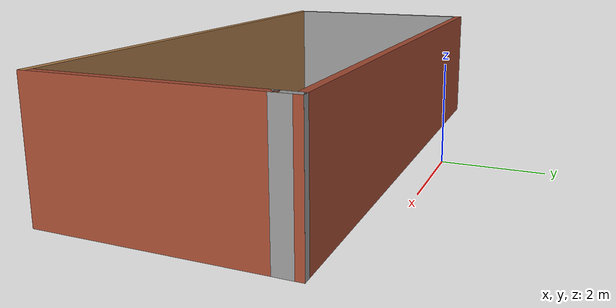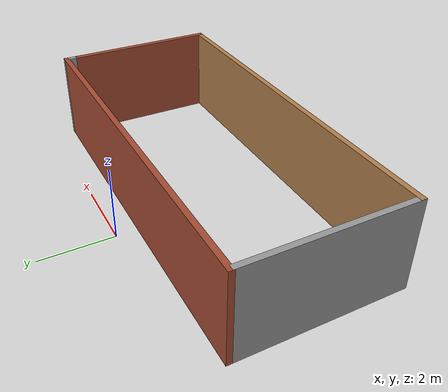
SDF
<?xml version='1.0'?>
<sdf version='1.6'>
  <model name='room'>
    <pose frame=''>0.48 -2.875 0 0 -0 0</pose>
    <link name='Wall_0'>
      <collision name='Wall_0_Collision'>
        <geometry>
          <box>
            <size>4.5 0.15 2.5</size>
          </box>
        </geometry>
        <pose frame=''>0 0 1.25 0 -0 0</pose>
      </collision>
      <visual name='Wall_0_Visual'>
        <pose frame=''>0 0 1.25 0 -0 0</pose>
        <geometry>
          <box>
            <size>4.5 0.15 2.5</size>
          </box>
        </geometry>
        <material>
          <script>
            <uri>file://media/materials/scripts/gazebo.material</uri>
            <name>Gazebo/Grey</name>
          </script>
          <ambient>1 1 1 1</ambient>
        </material>
        <meta>
          <layer>0</layer>
        </meta>
      </visual>
      <pose frame=''>-5.05 -0.05 0 0 0 -1.5708</pose>
    </link>
    <link name='Wall_1'>
      <collision name='Wall_1_Collision'>
        <geometry>
          <box>
            <size>10.25 0.15 2.5</size>
          </box>
        </geometry>
        <pose frame=''>0 0 1.25 0 -0 0</pose>
      </collision>
      <visual name='Wall_1_Visual'>
        <pose frame=''>0 0 1.25 0 -0 0</pose>
        <geometry>
          <box>
            <size>10.25 0.15 2.5</size>
          </box>
        </geometry>
        <material>
          <script>
            <uri>file://media/materials/scripts/gazebo.material</uri>
            <name>Gazebo/Wood</name>
          </script>
          <ambient>1 1 1 1</ambient>
        </material>
        <meta>
          <layer>0</layer>
        </meta>
      </visual>
      <pose frame=''>0 -2.225 0 0 -0 0</pose>
    </link>
    <link name='Wall_2'>
      <collision name='Wall_2_Collision'>
        <geometry>
          <box>
            <size>4.25 0.15 2.5</size>
          </box>
        </geometry>
        <pose frame=''>0 0 1.25 0 -0 0</pose>
      </collision>
      <visual name='Wall_2_Visual'>
        <pose frame=''>0 0 1.25 0 -0 0</pose>
        <geometry>
          <box>
            <size>4.25 0.15 2.5</size>
          </box>
        </geometry>
        <material>
          <script>
            <uri>file://media/materials/scripts/gazebo.material</uri>
            <name>Gazebo/Bricks</name>
          </script>
          <ambient>1 1 1 1</ambient>
        </material>
        <meta>
          <layer>0</layer>
        </meta>
      </visual>
      <pose frame=''>5.05 -0.175 0 0 -0 1.5708</pose>
    </link>
    <link name='Wall_3'>
      <collision name='Wall_3_Collision'>
        <geometry>
          <box>
            <size>0.5 0.15 2.5</size>
          </box>
        </geometry>
        <pose frame=''>0 0 1.25 0 -0 0</pose>
      </collision>
      <visual name='Wall_3_Visual'>
        <pose frame=''>0 0 1.25 0 -0 0</pose>
        <geometry>
          <box>
            <size>0.5 0.15 2.5</size>
          </box>
        </geometry>
        <material>
          <script>
            <uri>file://media/materials/scripts/gazebo.material</uri>
            <name>Gazebo/Grey</name>
          </script>
          <ambient>1 1 1 1</ambient>
        </material>
        <meta>
          <layer>0</layer>
        </meta>
      </visual>
      <pose frame=''>5.05 2.05 0 0 -0 1.5708</pose>
    </link>
    <link name='Wall_4'>
      <collision name='Wall_4_Collision'>
        <geometry>
          <box>
            <size>10.2505 0.15 2.5</size>
          </box>
        </geometry>
        <pose frame=''>0 0 1.25 0 -0 0</pose>
      </collision>
      <visual name='Wall_4_Visual'>
        <pose frame=''>0 0 1.25 0 -0 0</pose>
        <geometry>
          <box>
            <size>10.2505 0.15 2.5</size>
          </box>
        </geometry>
        <material>
          <script>
            <uri>file://media/materials/scripts/gazebo.material</uri>
            <name>Gazebo/Bricks</name>
          </script>
          <ambient>1 1 1 1</ambient>
        </material>
        <meta>
          <layer>0</layer>
        </meta>
      </visual>
      <pose frame=''>0 2.225 0 0 -0 3.14159</pose>
    </link>
    <static>1</static>
  </model>
</sdf>
